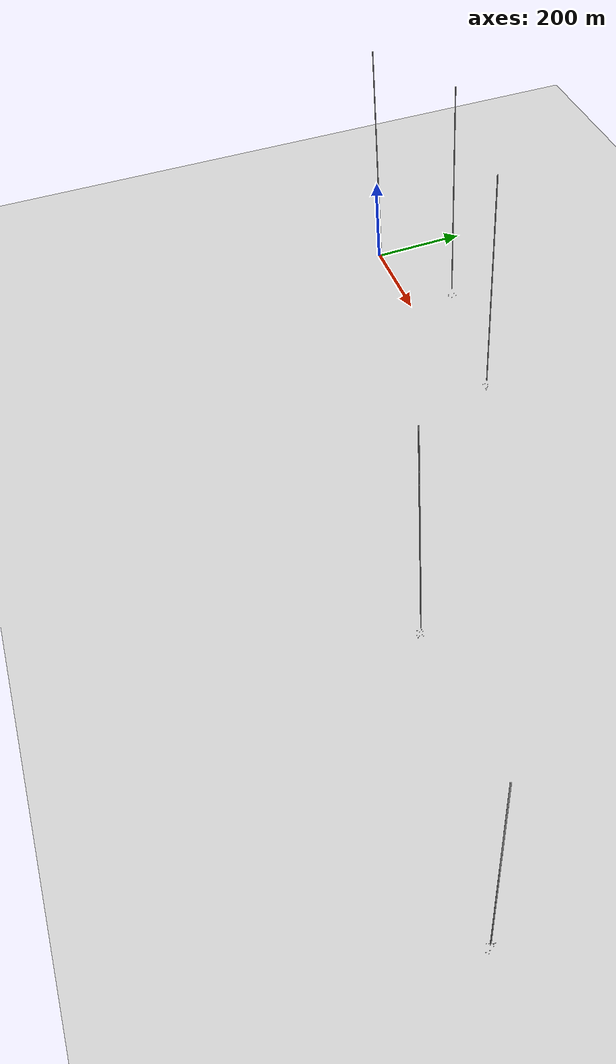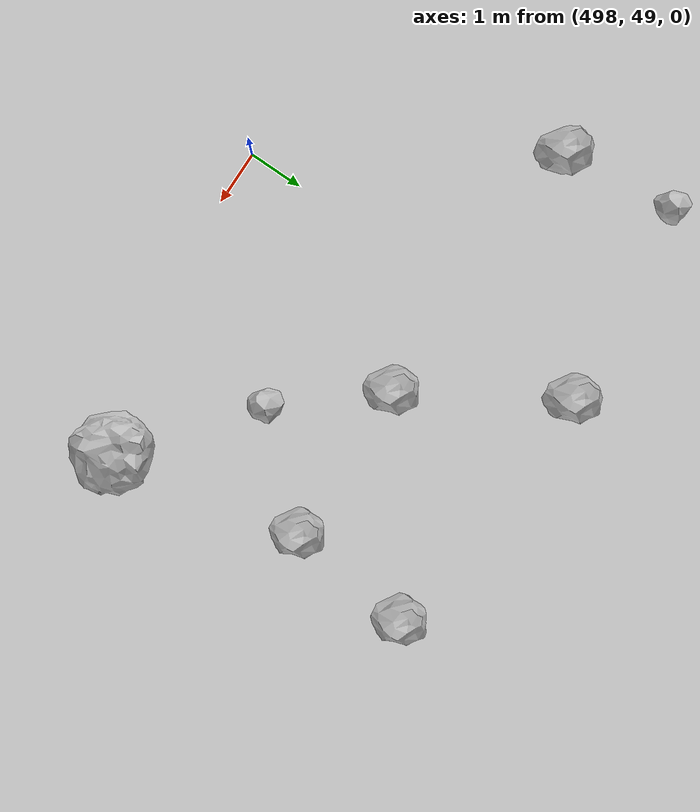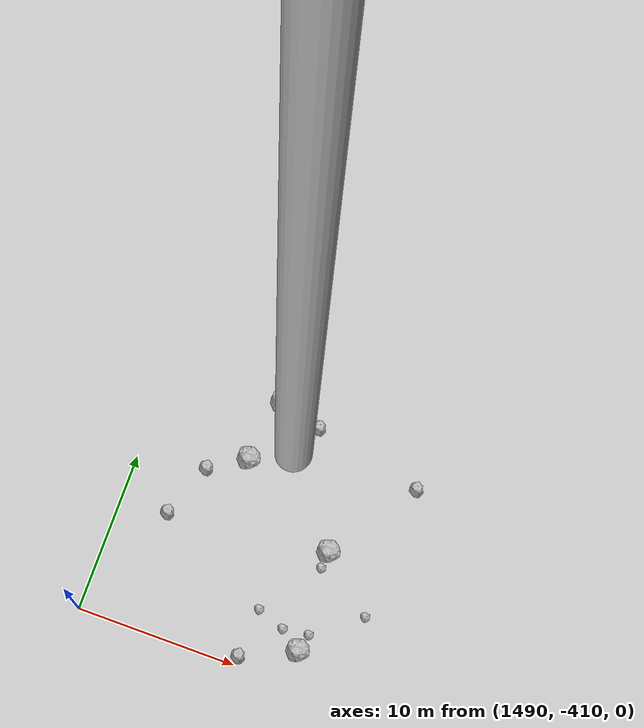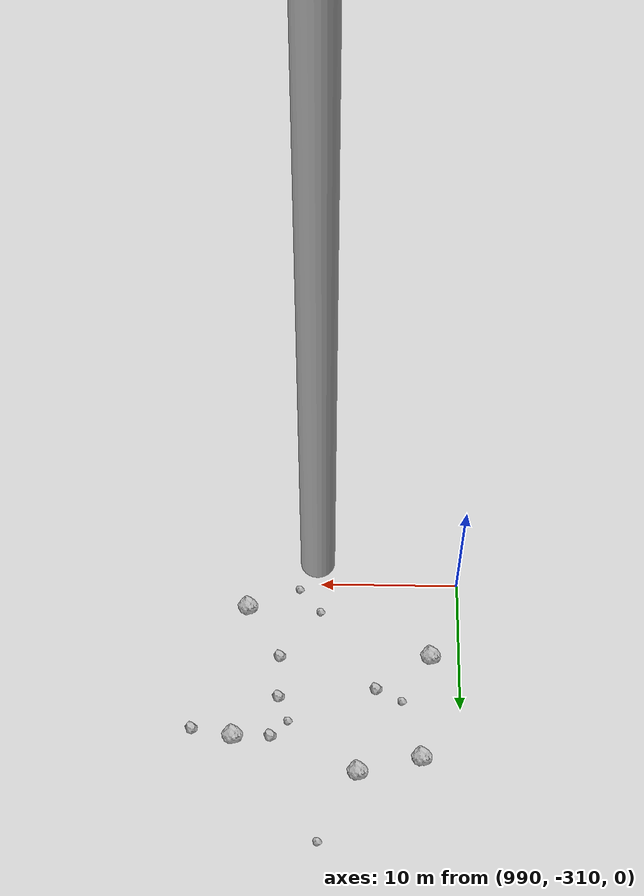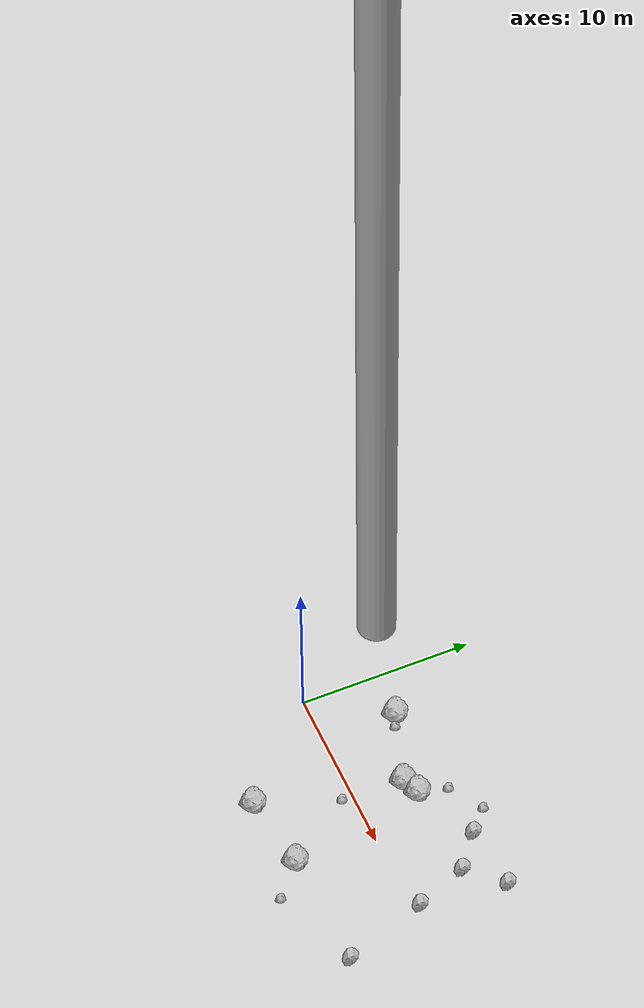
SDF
<?xml version="1.0" ?>
<sdf version="1.6">
  <world name="default">

    <include>
      <uri>model://custom_ground</uri>
    </include>

    <include>
      <uri>model://sun</uri>
    </include>

    <spherical_coordinates>
      <surface_model>EARTH_WGS84</surface_model>
      <latitude_deg>38.161479</latitude_deg>
      <longitude_deg>-122.454630</longitude_deg>
      <elevation>488.0</elevation>
      <heading_deg>90</heading_deg>
    </spherical_coordinates>

    <model name="rock1_0_0">
      <include>
        <uri>model://rock1</uri>
        <pose>2.890791257101737 4.314990449809947 0.5 0 0 0</pose>
      </include>
    </model>
    <model name="rock1_0_1">
      <include>
        <uri>model://rock1</uri>
        <pose>5.224696212704172 -5.244118116748393 0.5 0 0 0</pose>
      </include>
    </model>
    <model name="rock1_0_2">
      <include>
        <uri>model://rock1</uri>
        <pose>8.15899813046813 3.3014279086245395 0.5 0 0 0</pose>
      </include>
    </model>
    <model name="rock1_0_3">
      <include>
        <uri>model://rock1</uri>
        <pose>7.157320892918911 2.8753191350318996 0.5 0 0 0</pose>
      </include>
    </model>
    <model name="rock1_0_4">
      <include>
        <uri>model://rock1</uri>
        <pose>9.59243671758549 -4.609040924015186 0.5 0 0 0</pose>
      </include>
    </model>
    <model name="rock2_0_0">
      <include>
        <uri>model://rock2</uri>
        <pose>16.34561588745125 -4.320762010748089 0.3 0 0 0</pose>
      </include>
    </model>
    <model name="rock2_0_1">
      <include>
        <uri>model://rock2</uri>
        <pose>14.762668612567563 0.4813491905443694 0.3 0 0 0</pose>
      </include>
    </model>
    <model name="rock2_0_2">
      <include>
        <uri>model://rock2</uri>
        <pose>15.450869807903073 5.380294597503884 0.3 0 0 0</pose>
      </include>
    </model>
    <model name="rock2_0_3">
      <include>
        <uri>model://rock2</uri>
        <pose>13.620024507045773 3.487069513790768 0.3 0 0 0</pose>
      </include>
    </model>
    <model name="rock2_0_4">
      <include>
        <uri>model://rock2</uri>
        <pose>11.704358119172422 5.037421775370305 0.3 0 0 0</pose>
      </include>
    </model>
    <model name="rock3_0_0">
      <include>
        <uri>model://rock3</uri>
        <pose>6.847550854880429 -0.6739378351105572 0.2 0 0 0</pose>
      </include>
    </model>
    <model name="rock3_0_1">
      <include>
        <uri>model://rock3</uri>
        <pose>3.5829729419370793 3.9678030223816947 0.2 0 0 0</pose>
      </include>
    </model>
    <model name="rock3_0_2">
      <include>
        <uri>model://rock3</uri>
        <pose>10.469059764012682 6.166874605397716 0.2 0 0 0</pose>
      </include>
    </model>
    <model name="rock3_0_3">
      <include>
        <uri>model://rock3</uri>
        <pose>11.388215090538765 -6.273909849361841 0.2 0 0 0</pose>
      </include>
    </model>
    <model name="rock3_0_4">
      <include>
        <uri>model://rock3</uri>
        <pose>8.51184775953117 4.9632928259054925 0.2 0 0 0</pose>
      </include>
    </model>
    <model name="rock1_1_0">
      <include>
        <uri>model://rock1</uri>
        <pose>205.20238532002048 100.49779226978394 0.5 0 0 0</pose>
      </include>
    </model>
    <model name="rock1_1_1">
      <include>
        <uri>model://rock1</uri>
        <pose>205.15566801325596 108.33730757825305 0.5 0 0 0</pose>
      </include>
    </model>
    <model name="rock1_1_2">
      <include>
        <uri>model://rock1</uri>
        <pose>201.05980375896735 91.47588323324167 0.5 0 0 0</pose>
      </include>
    </model>
    <model name="rock1_1_3">
      <include>
        <uri>model://rock1</uri>
        <pose>207.41455136145484 97.32474047808599 0.5 0 0 0</pose>
      </include>
    </model>
    <model name="rock1_1_4">
      <include>
        <uri>model://rock1</uri>
        <pose>193.2468644876572 95.97364913736577 0.5 0 0 0</pose>
      </include>
    </model>
    <model name="rock2_1_0">
      <include>
        <uri>model://rock2</uri>
        <pose>196.42794552956508 107.16418593402705 0.3 0 0 0</pose>
      </include>
    </model>
    <model name="rock2_1_1">
      <include>
        <uri>model://rock2</uri>
        <pose>201.7009501720436 105.76877339254415 0.3 0 0 0</pose>
      </include>
    </model>
    <model name="rock2_1_2">
      <include>
        <uri>model://rock2</uri>
        <pose>196.47463581885012 93.85997127938731 0.3 0 0 0</pose>
      </include>
    </model>
    <model name="rock2_1_3">
      <include>
        <uri>model://rock2</uri>
        <pose>201.44043518688406 102.69097606509416 0.3 0 0 0</pose>
      </include>
    </model>
    <model name="rock2_1_4">
      <include>
        <uri>model://rock2</uri>
        <pose>200.43133242513218 92.82238441967384 0.3 0 0 0</pose>
      </include>
    </model>
    <model name="rock3_1_0">
      <include>
        <uri>model://rock3</uri>
        <pose>196.29175322643277 105.52600608231181 0.2 0 0 0</pose>
      </include>
    </model>
    <model name="rock3_1_1">
      <include>
        <uri>model://rock3</uri>
        <pose>201.3116959806229 105.14618374612934 0.2 0 0 0</pose>
      </include>
    </model>
    <model name="rock3_1_2">
      <include>
        <uri>model://rock3</uri>
        <pose>203.62648244138666 105.88220943107501 0.2 0 0 0</pose>
      </include>
    </model>
    <model name="rock3_1_3">
      <include>
        <uri>model://rock3</uri>
        <pose>199.07337972760504 106.4321274765532 0.2 0 0 0</pose>
      </include>
    </model>
    <model name="rock3_1_4">
      <include>
        <uri>model://rock3</uri>
        <pose>194.49492913232194 102.0567022923569 0.2 0 0 0</pose>
      </include>
    </model>
    <model name="rock1_2_0">
      <include>
        <uri>model://rock1</uri>
        <pose>491.52441856131304 45.60800811504376 0.5 0 0 0</pose>
      </include>
    </model>
    <model name="rock1_2_1">
      <include>
        <uri>model://rock1</uri>
        <pose>504.4967095496232 45.82328245526907 0.5 0 0 0</pose>
      </include>
    </model>
    <model name="rock1_2_2">
      <include>
        <uri>model://rock1</uri>
        <pose>490.17300860767205 51.38287720971016 0.5 0 0 0</pose>
      </include>
    </model>
    <model name="rock1_2_3">
      <include>
        <uri>model://rock1</uri>
        <pose>503.6904841982016 49.97341184015376 0.5 0 0 0</pose>
      </include>
    </model>
    <model name="rock1_2_4">
      <include>
        <uri>model://rock1</uri>
        <pose>508.25600361159536 46.67473904841624 0.5 0 0 0</pose>
      </include>
    </model>
    <model name="rock2_2_0">
      <include>
        <uri>model://rock2</uri>
        <pose>498.4585153455627 56.04000844680436 0.3 0 0 0</pose>
      </include>
    </model>
    <model name="rock2_2_1">
      <include>
        <uri>model://rock2</uri>
        <pose>503.0623371525951 53.38734157947094 0.3 0 0 0</pose>
      </include>
    </model>
    <model name="rock2_2_2">
      <include>
        <uri>model://rock2</uri>
        <pose>503.3212504662493 55.69324252972279 0.3 0 0 0</pose>
      </include>
    </model>
    <model name="rock2_2_3">
      <include>
        <uri>model://rock2</uri>
        <pose>494.9694165630593 53.51674006156719 0.3 0 0 0</pose>
      </include>
    </model>
    <model name="rock2_2_4">
      <include>
        <uri>model://rock2</uri>
        <pose>500.09089890162636 53.353530210940704 0.3 0 0 0</pose>
      </include>
    </model>
    <model name="rock3_2_0">
      <include>
        <uri>model://rock3</uri>
        <pose>491.8274499052062 54.71988910469078 0.2 0 0 0</pose>
      </include>
    </model>
    <model name="rock3_2_1">
      <include>
        <uri>model://rock3</uri>
        <pose>494.6852250166959 55.58929323240434 0.2 0 0 0</pose>
      </include>
    </model>
    <model name="rock3_2_2">
      <include>
        <uri>model://rock3</uri>
        <pose>501.51393337046125 51.643365505146726 0.2 0 0 0</pose>
      </include>
    </model>
    <model name="rock3_2_3">
      <include>
        <uri>model://rock3</uri>
        <pose>508.3813840694093 45.94567466469675 0.2 0 0 0</pose>
      </include>
    </model>
    <model name="rock3_2_4">
      <include>
        <uri>model://rock3</uri>
        <pose>507.88941568924884 44.40573867773809 0.2 0 0 0</pose>
      </include>
    </model>
    <model name="rock1_3_0">
      <include>
        <uri>model://rock1</uri>
        <pose>1005.3734953651557 -307.80252873783553 0.5 0 0 0</pose>
      </include>
    </model>
    <model name="rock1_3_1">
      <include>
        <uri>model://rock1</uri>
        <pose>992.0458664424787 -303.9832169414441 0.5 0 0 0</pose>
      </include>
    </model>
    <model name="rock1_3_2">
      <include>
        <uri>model://rock1</uri>
        <pose>997.2429825504956 -295.0117738650603 0.5 0 0 0</pose>
      </include>
    </model>
    <model name="rock1_3_3">
      <include>
        <uri>model://rock1</uri>
        <pose>992.7950298125687 -296.1402589226999 0.5 0 0 0</pose>
      </include>
    </model>
    <model name="rock1_3_4">
      <include>
        <uri>model://rock1</uri>
        <pose>1006.0128593401372 -297.5444564417398 0.5 0 0 0</pose>
      </include>
    </model>
    <model name="rock2_3_0">
      <include>
        <uri>model://rock2</uri>
        <pose>1003.3759592007692 -297.6382115731449 0.3 0 0 0</pose>
      </include>
    </model>
    <model name="rock2_3_1">
      <include>
        <uri>model://rock2</uri>
        <pose>995.972488842484 -301.3746597571786 0.3 0 0 0</pose>
      </include>
    </model>
    <model name="rock2_3_2">
      <include>
        <uri>model://rock2</uri>
        <pose>1002.8980217777079 -300.665169573906 0.3 0 0 0</pose>
      </include>
    </model>
    <model name="rock2_3_3">
      <include>
        <uri>model://rock2</uri>
        <pose>1008.9185408263893 -298.09659881454616 0.3 0 0 0</pose>
      </include>
    </model>
    <model name="rock2_3_4">
      <include>
        <uri>model://rock2</uri>
        <pose>1002.9076633879992 -303.8626323494071 0.3 0 0 0</pose>
      </include>
    </model>
    <model name="rock3_3_0">
      <include>
        <uri>model://rock3</uri>
        <pose>1000.0001267050367 -307.5999256903842 0.2 0 0 0</pose>
      </include>
    </model>
    <model name="rock3_3_1">
      <include>
        <uri>model://rock3</uri>
        <pose>999.889333685797 -290.0157793640166 0.2 0 0 0</pose>
      </include>
    </model>
    <model name="rock3_3_2">
      <include>
        <uri>model://rock3</uri>
        <pose>1002.1366733071061 -298.8301378350211 0.2 0 0 0</pose>
      </include>
    </model>
    <model name="rock3_3_3">
      <include>
        <uri>model://rock3</uri>
        <pose>1001.5806891182357 -309.46287063306767 0.2 0 0 0</pose>
      </include>
    </model>
    <model name="rock3_3_4">
      <include>
        <uri>model://rock3</uri>
        <pose>994.100750644835 -300.5067433329903 0.2 0 0 0</pose>
      </include>
    </model>
    <model name="rock1_4_0">
      <include>
        <uri>model://rock1</uri>
        <pose>1503.3879903730424 -407.86937502177835 0.5 0 0 0</pose>
      </include>
    </model>
    <model name="rock1_4_1">
      <include>
        <uri>model://rock1</uri>
        <pose>1503.0891471450607 -401.55305649702734 0.5 0 0 0</pose>
      </include>
    </model>
    <model name="rock1_4_2">
      <include>
        <uri>model://rock1</uri>
        <pose>1496.5173756380464 -397.80116601194305 0.5 0 0 0</pose>
      </include>
    </model>
    <model name="rock1_4_3">
      <include>
        <uri>model://rock1</uri>
        <pose>1497.2921012722898 -390.8964822067168 0.5 0 0 0</pose>
      </include>
    </model>
    <model name="rock1_4_4">
      <include>
        <uri>model://rock1</uri>
        <pose>1497.2334219578177 -393.76184387512836 0.5 0 0 0</pose>
      </include>
    </model>
    <model name="rock2_4_0">
      <include>
        <uri>model://rock2</uri>
        <pose>1500.0865305102918 -409.4027459256596 0.3 0 0 0</pose>
      </include>
    </model>
    <model name="rock2_4_1">
      <include>
        <uri>model://rock2</uri>
        <pose>1494.251612645169 -399.2276889869638 0.3 0 0 0</pose>
      </include>
    </model>
    <model name="rock2_4_2">
      <include>
        <uri>model://rock2</uri>
        <pose>1499.9367030999215 -394.5002501034923 0.3 0 0 0</pose>
      </include>
    </model>
    <model name="rock2_4_3">
      <include>
        <uri>model://rock2</uri>
        <pose>1492.9787918035793 -402.62656567447857 0.3 0 0 0</pose>
      </include>
    </model>
    <model name="rock2_4_4">
      <include>
        <uri>model://rock2</uri>
        <pose>1506.8586185713223 -396.05703196192604 0.3 0 0 0</pose>
      </include>
    </model>
    <model name="rock3_4_0">
      <include>
        <uri>model://rock3</uri>
        <pose>1502.9852152191659 -402.6454562999741 0.2 0 0 0</pose>
      </include>
    </model>
    <model name="rock3_4_1">
      <include>
        <uri>model://rock3</uri>
        <pose>1503.6560922930587 -406.756496562385 0.2 0 0 0</pose>
      </include>
    </model>
    <model name="rock3_4_2">
      <include>
        <uri>model://rock3</uri>
        <pose>1502.0399912222235 -406.94519252598195 0.2 0 0 0</pose>
      </include>
    </model>
    <model name="rock3_4_3">
      <include>
        <uri>model://rock3</uri>
        <pose>1500.299070673168 -406.3255007016989 0.2 0 0 0</pose>
      </include>
    </model>
    <model name="rock3_4_4">
      <include>
        <uri>model://rock3</uri>
        <pose>1506.5205220708233 -404.56206899223247 0.2 0 0 0</pose>
      </include>
    </model>

    <model name="cylinder_1">
      <static>true</static>
      <link name="link">
        <visual name="visual">
          <geometry>
            <cylinder>
              <radius>1</radius>
              <length>500</length>
            </cylinder>
          </geometry>
        </visual>
      </link>
      <pose>10 0 270 0 0 0</pose>
    </model>

    <model name="cylinder_2">
      <static>true</static>
      <link name="link">
        <visual name="visual">
          <geometry>
            <cylinder>
              <radius>1</radius>
              <length>500</length>
            </cylinder>
          </geometry>
        </visual>
      </link>
      <pose>200 100 270 0 0 0</pose>
    </model>

    <model name="cylinder_3">
      <static>true</static>
      <link name="link">
        <visual name="visual">
          <geometry>
            <cylinder>
              <radius>1</radius>
              <length>500</length>
            </cylinder>
          </geometry>
        </visual>
      </link>
      <pose>500 50 270 0 0 0</pose>
    </model>

    <model name="cylinder_4">
      <static>true</static>
      <link name="link">
        <visual name="visual">
          <geometry>
            <cylinder>
              <radius>1</radius>
              <length>500</length>
            </cylinder>
          </geometry>
        </visual>
      </link>
      <pose>1000 -300 270 0 0 0</pose>
    </model>

    <model name="cylinder_5">
      <static>true</static>
      <link name="link">
        <visual name="visual">
          <geometry>
            <cylinder>
              <radius>1</radius>
              <length>500</length>
            </cylinder>
          </geometry>
        </visual>
      </link>
      <pose>1500 -400 270 0 0 0</pose>
    </model>

  </world>
</sdf>

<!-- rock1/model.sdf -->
<sdf version="1.6">
  <model name="rock1">
    <static>true</static> <!-- Set to true if the model should not move -->
    <pose>0 0 0 0 0 0</pose>

    <!--z offset is 0.5 for full scale-->

    <link name="link">
      <collision name="rock1_collision">
        <geometry>
          <mesh>
            <uri>model://meshes/rock1.dae</uri>
          </mesh>
        </geometry>
      </collision>
      <visual name="rock1_visual">
        <geometry>
          <mesh>
            <uri>model://meshes/rock1.dae</uri>
          </mesh>
        </geometry>
        <material>
          <script>
            <uri>model://materials/scripts/sand_pebbles.material</uri>
            <name>custom_ground/Image</name>
          </script>
        </material>
      </visual>
    </link>
  </model>
</sdf>

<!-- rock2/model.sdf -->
<sdf version="1.6">
  <model name="rock2">
    <static>true</static> <!-- Set to true if the model should not move -->
    <pose>0 0 0 0 0 0</pose>

    <!--z offset is 0.3 for full scale-->

    <link name="link">
      <collision name="rock2_collision">
        <geometry>
          <mesh>
            <uri>model://meshes/rock2.dae</uri>
          </mesh>
        </geometry>
      </collision>
      <visual name="rock2_visual">
        <geometry>
          <mesh>
            <uri>model://meshes/rock2.dae</uri>
          </mesh>
        </geometry>
        <material>
          <script>
            <uri>model://materials/scripts/sand_pebbles.material</uri>
            <name>custom_ground/Image</name>
          </script>
        </material>
      </visual>
    </link>
  </model>
</sdf>

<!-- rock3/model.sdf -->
<sdf version="1.6">
  <model name="rock3">
    <static>true</static> <!-- Set to true if the model should not move -->
    <pose>0 0 0 0 0 0</pose>

    <!--z offset is 0.2 for full scale-->

    <link name="link">
      <collision name="rock3_collision">
        <geometry>
          <mesh>
            <uri>model://meshes/rock3.dae</uri>
          </mesh>
        </geometry>
      </collision>
      <visual name="rock3_visual">
        <geometry>
          <mesh>
            <uri>model://meshes/rock3.dae</uri>
          </mesh>
        </geometry>
        <material>
          <script>
            <uri>model://materials/scripts/sand_pebbles.material</uri>
            <name>custom_ground/Image</name>
          </script>
        </material>
      </visual>
    </link>
  </model>
</sdf>

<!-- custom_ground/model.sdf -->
<sdf version="1.6">
  <model name="custom_ground">
    <static>true</static> <!-- Ground is static and immovable -->
    <link name="ground_link">
      <pose>240 0 0 0 0 0</pose> <!-- Position and orientation relative to the world -->
      <!-- Visual Representation -->
      <visual name="ground_visual">
        <geometry>
          <plane>
            <normal>0 0 1</normal> <!-- Upward facing plane -->
            <size>500 500</size> <!-- Size of the plane -->
          </plane>
        </geometry>
        <material>
          <script>
            <uri>model://materials/scripts/sand_pebbles.material</uri>
            <name>custom_ground/Image</name>
          </script>
        </material>
      </visual>

      <!-- Collision Representation -->
      <collision name="ground_collision">
        <geometry>
          <plane>
            <normal>0 0 1</normal>
            <size>100 100</size>
          </plane>
        </geometry>
      </collision>

    </link>
  </model>
</sdf>
